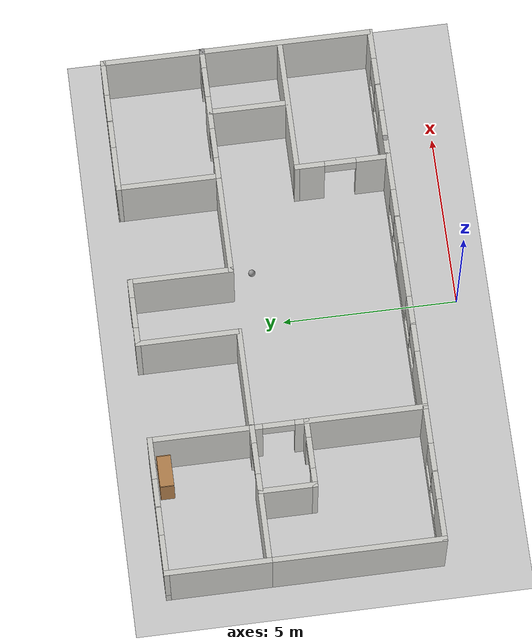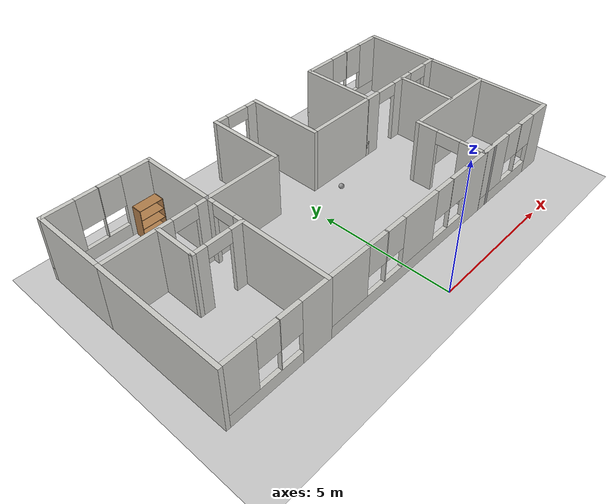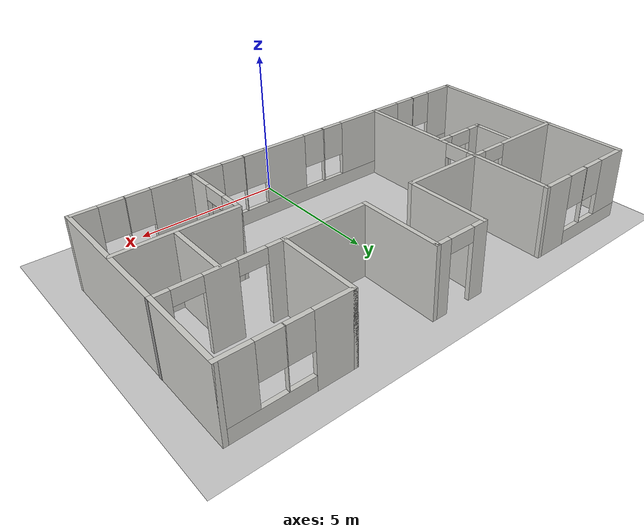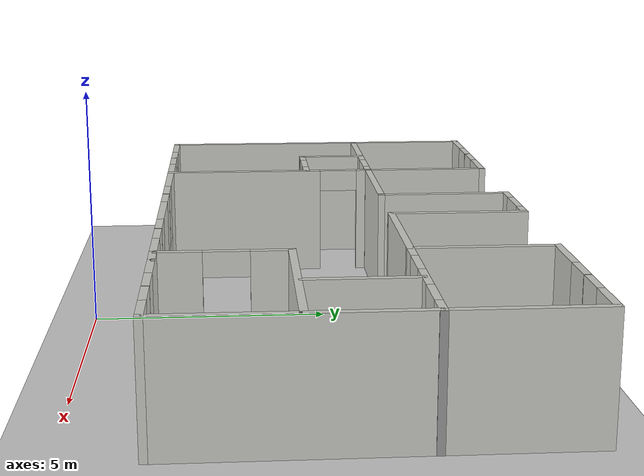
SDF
<sdf version="1.6">
 <world name="default">
  <model name="ground_plane">
   <static>1</static>
   <link name="link">
    <collision name="collision">
     <geometry><plane><normal>0 0 1</normal><size>100 100</size></plane></geometry>
     <surface>
      <contact><collide_bitmask>65535</collide_bitmask></contact>
      <friction><ode><mu>100</mu><mu2>50</mu2></ode></friction>
     </surface>
    </collision>
    <visual name="visual">
     <cast_shadows>0</cast_shadows>
     <geometry><plane><normal>0 0 1</normal><size>100 100</size></plane></geometry>
     <material>
      <script><uri>file://media/materials/scripts/gazebo.material</uri><name>Gazebo/Grey</name></script>
     </material>
    </visual>
   </link>
  </model>
  <model name="MyOffice">
   <pose>-0.034703 5.38022 0 0 -0 0</pose>
   <link name="Wall_0">
    <pose>-0.005 3.85 0 0 -0 3.14159</pose>
    <visual name="Wall_0_Visual_0">
     <pose>-0.723973 0 1.25 0 -0 0</pose>
     <geometry><box><size>0.552053 0.15 2.5</size></box></geometry>
     <material>
      <script><uri>file://media/materials/scripts/gazebo.material</uri><name>Gazebo/CeilingTiled</name></script>
      <ambient>1 1 1 1</ambient>
     </material>
     <meta><layer>0</layer></meta>
    </visual>
    <collision name="Wall_0_Collision_0">
     <geometry><box><size>0.552053 0.15 2.5</size></box></geometry>
     <pose>-0.723973 0 1.25 0 -0 0</pose>
    </collision>
    <visual name="Wall_0_Visual_1">
     <pose>0.726027 0 1.25 0 -0 0</pose>
     <geometry><box><size>0.547947 0.15 2.5</size></box></geometry>
     <material>
      <script><uri>file://media/materials/scripts/gazebo.material</uri><name>Gazebo/CeilingTiled</name></script>
      <ambient>1 1 1 1</ambient>
     </material>
     <meta><layer>0</layer></meta>
    </visual>
    <collision name="Wall_0_Collision_1">
     <geometry><box><size>0.547947 0.15 2.5</size></box></geometry>
     <pose>0.726027 0 1.25 0 -0 0</pose>
    </collision>
    <visual name="Wall_0_Visual_2">
     <pose>0.002053 0 2.25 0 -0 0</pose>
     <geometry><box><size>0.9 0.15 0.5</size></box></geometry>
     <material>
      <script><uri>file://media/materials/scripts/gazebo.material</uri><name>Gazebo/CeilingTiled</name></script>
      <ambient>1 1 1 1</ambient>
     </material>
     <meta><layer>0</layer></meta>
    </visual>
    <collision name="Wall_0_Collision_2">
     <geometry><box><size>0.9 0.15 0.5</size></box></geometry>
     <pose>0.002053 0 2.25 0 -0 0</pose>
    </collision>
   </link>
   <link name="Wall_1">
    <collision name="Wall_1_Collision">
     <geometry><box><size>3 0.15 2.5</size></box></geometry>
     <pose>0 0 1.25 0 -0 0</pose>
    </collision>
    <visual name="Wall_1_Visual">
     <pose>0 0 1.25 0 -0 0</pose>
     <geometry><box><size>3 0.15 2.5</size></box></geometry>
     <material>
      <script><uri>file://media/materials/scripts/gazebo.material</uri><name>Gazebo/CeilingTiled</name></script>
      <ambient>1 1 1 1</ambient>
     </material>
     <meta><layer>0</layer></meta>
    </visual>
    <pose>-0.93 2.425 0 0 0 -1.5708</pose>
   </link>
   <link name="Wall_10">
    <collision name="Wall_10_Collision">
     <geometry><box><size>0.16 0.15 2.5</size></box></geometry>
     <pose>0 0 1.25 0 -0 0</pose>
    </collision>
    <visual name="Wall_10_Visual">
     <pose>0 0 1.25 0 -0 0</pose>
     <geometry><box><size>0.16 0.15 2.5</size></box></geometry>
     <material>
      <script><uri>file://media/materials/scripts/gazebo.material</uri><name>Gazebo/Grey</name></script>
      <ambient>1 1 1 1</ambient>
     </material>
     <meta><layer>0</layer></meta>
    </visual>
    <pose>3.775 -3.85 0 0 -0 0</pose>
   </link>
   <link name="Wall_14">
    <collision name="Wall_14_Collision">
     <geometry><box><size>5 0.15 2.5</size></box></geometry>
     <pose>0 0 1.25 0 -0 0</pose>
    </collision>
    <visual name="Wall_14_Visual">
     <pose>0 0 1.25 0 -0 0</pose>
     <geometry><box><size>5 0.15 2.5</size></box></geometry>
     <material>
      <script><uri>file://media/materials/scripts/gazebo.material</uri><name>Gazebo/CeilingTiled</name></script>
      <ambient>1 1 1 1</ambient>
     </material>
     <meta><layer>0</layer></meta>
    </visual>
    <pose>7.62 -1.425 0 0 0 -1.5708</pose>
   </link>
   <link name="Wall_15">
    <pose>5.695 -3.85 0 0 -0 3.14159</pose>
    <visual name="Wall_15_Visual_0">
     <pose>-1.54591 0 1.25 0 -0 0</pose>
     <geometry><box><size>0.908188 0.15 2.5</size></box></geometry>
     <material>
      <script><uri>file://media/materials/scripts/gazebo.material</uri><name>Gazebo/CeilingTiled</name></script>
      <ambient>1 1 1 1</ambient>
     </material>
     <meta><layer>0</layer></meta>
    </visual>
    <collision name="Wall_15_Collision_0">
     <geometry><box><size>0.908188 0.15 2.5</size></box></geometry>
     <pose>-1.54591 0 1.25 0 -0 0</pose>
    </collision>
    <visual name="Wall_15_Visual_1">
     <pose>0.454094 0 0.25 0 -0 0</pose>
     <geometry><box><size>3.09181 0.15 0.5</size></box></geometry>
     <material>
      <script><uri>file://media/materials/scripts/gazebo.material</uri><name>Gazebo/CeilingTiled</name></script>
      <ambient>1 1 1 1</ambient>
     </material>
     <meta><layer>0</layer></meta>
    </visual>
    <collision name="Wall_15_Collision_1">
     <geometry><box><size>3.09181 0.15 0.5</size></box></geometry>
     <pose>0.454094 0 0.25 0 -0 0</pose>
    </collision>
    <visual name="Wall_15_Visual_2">
     <pose>-0.280795 0 1.5 0 -0 0</pose>
     <geometry><box><size>0.022033 0.15 2</size></box></geometry>
     <material>
      <script><uri>file://media/materials/scripts/gazebo.material</uri><name>Gazebo/CeilingTiled</name></script>
      <ambient>1 1 1 1</ambient>
     </material>
     <meta><layer>0</layer></meta>
    </visual>
    <collision name="Wall_15_Collision_2">
     <geometry><box><size>0.022033 0.15 2</size></box></geometry>
     <pose>-0.280795 0 1.5 0 -0 0</pose>
    </collision>
    <visual name="Wall_15_Visual_3">
     <pose>1.26511 0 1.5 0 -0 0</pose>
     <geometry><box><size>1.46978 0.15 2</size></box></geometry>
     <material>
      <script><uri>file://media/materials/scripts/gazebo.material</uri><name>Gazebo/CeilingTiled</name></script>
      <ambient>1 1 1 1</ambient>
     </material>
     <meta><layer>0</layer></meta>
    </visual>
    <collision name="Wall_15_Collision_3">
     <geometry><box><size>1.46978 0.15 2</size></box></geometry>
     <pose>1.26511 0 1.5 0 -0 0</pose>
    </collision>
    <visual name="Wall_15_Visual_4">
     <pose>-0.691812 0 1.9 0 -0 0</pose>
     <geometry><box><size>0.8 0.15 1.2</size></box></geometry>
     <material>
      <script><uri>file://media/materials/scripts/gazebo.material</uri><name>Gazebo/CeilingTiled</name></script>
      <ambient>1 1 1 1</ambient>
     </material>
     <meta><layer>0</layer></meta>
    </visual>
    <collision name="Wall_15_Collision_4">
     <geometry><box><size>0.8 0.15 1.2</size></box></geometry>
     <pose>-0.691812 0 1.9 0 -0 0</pose>
    </collision>
    <visual name="Wall_15_Visual_5">
     <pose>0.130221 0 1.9 0 -0 0</pose>
     <geometry><box><size>0.8 0.15 1.2</size></box></geometry>
     <material>
      <script><uri>file://media/materials/scripts/gazebo.material</uri><name>Gazebo/CeilingTiled</name></script>
      <ambient>1 1 1 1</ambient>
     </material>
     <meta><layer>0</layer></meta>
    </visual>
    <collision name="Wall_15_Collision_5">
     <geometry><box><size>0.8 0.15 1.2</size></box></geometry>
     <pose>0.130221 0 1.9 0 -0 0</pose>
    </collision>
   </link>
   <link name="Wall_17">
    <collision name="Wall_17_Collision">
     <geometry><box><size>3 0.15 2.5</size></box></geometry>
     <pose>0 0 1.25 0 -0 0</pose>
    </collision>
    <visual name="Wall_17_Visual">
     <pose>0 0 1.25 0 -0 0</pose>
     <geometry><box><size>3 0.15 2.5</size></box></geometry>
     <material>
      <script><uri>file://media/materials/scripts/gazebo.material</uri><name>Gazebo/CeilingTiled</name></script>
      <ambient>1 1 1 1</ambient>
     </material>
     <meta><layer>0</layer></meta>
    </visual>
    <pose>3.77 2.425 0 0 -0 1.5708</pose>
   </link>
   <link name="Wall_18">
    <pose>5.695 3.85 0 0 -0 0</pose>
    <visual name="Wall_18_Visual_0">
     <pose>-1.34382 0 1.25 0 -0 0</pose>
     <geometry><box><size>1.31237 0.15 2.5</size></box></geometry>
     <material>
      <script><uri>file://media/materials/scripts/gazebo.material</uri><name>Gazebo/CeilingTiled</name></script>
      <ambient>1 1 1 1</ambient>
     </material>
     <meta><layer>0</layer></meta>
    </visual>
    <collision name="Wall_18_Collision_0">
     <geometry><box><size>1.31237 0.15 2.5</size></box></geometry>
     <pose>-1.34382 0 1.25 0 -0 0</pose>
    </collision>
    <visual name="Wall_18_Visual_1">
     <pose>0.656184 0 0.25 0 -0 0</pose>
     <geometry><box><size>2.68763 0.15 0.5</size></box></geometry>
     <material>
      <script><uri>file://media/materials/scripts/gazebo.material</uri><name>Gazebo/CeilingTiled</name></script>
      <ambient>1 1 1 1</ambient>
     </material>
     <meta><layer>0</layer></meta>
    </visual>
    <collision name="Wall_18_Collision_1">
     <geometry><box><size>2.68763 0.15 0.5</size></box></geometry>
     <pose>0.656184 0 0.25 0 -0 0</pose>
    </collision>
    <visual name="Wall_18_Visual_2">
     <pose>0.123384 0 1.5 0 -0 0</pose>
     <geometry><box><size>0.022033 0.15 2</size></box></geometry>
     <material>
      <script><uri>file://media/materials/scripts/gazebo.material</uri><name>Gazebo/CeilingTiled</name></script>
      <ambient>1 1 1 1</ambient>
     </material>
     <meta><layer>0</layer></meta>
    </visual>
    <collision name="Wall_18_Collision_2">
     <geometry><box><size>0.022033 0.15 2</size></box></geometry>
     <pose>0.123384 0 1.5 0 -0 0</pose>
    </collision>
    <visual name="Wall_18_Visual_3">
     <pose>1.4672 0 1.5 0 -0 0</pose>
     <geometry><box><size>1.0656 0.15 2</size></box></geometry>
     <material>
      <script><uri>file://media/materials/scripts/gazebo.material</uri><name>Gazebo/CeilingTiled</name></script>
      <ambient>1 1 1 1</ambient>
     </material>
     <meta><layer>0</layer></meta>
    </visual>
    <collision name="Wall_18_Collision_3">
     <geometry><box><size>1.0656 0.15 2</size></box></geometry>
     <pose>1.4672 0 1.5 0 -0 0</pose>
    </collision>
    <visual name="Wall_18_Visual_4">
     <pose>-0.287632 0 1.9 0 -0 0</pose>
     <geometry><box><size>0.8 0.15 1.2</size></box></geometry>
     <material>
      <script><uri>file://media/materials/scripts/gazebo.material</uri><name>Gazebo/CeilingTiled</name></script>
      <ambient>1 1 1 1</ambient>
     </material>
     <meta><layer>0</layer></meta>
    </visual>
    <collision name="Wall_18_Collision_4">
     <geometry><box><size>0.8 0.15 1.2</size></box></geometry>
     <pose>-0.287632 0 1.9 0 -0 0</pose>
    </collision>
    <visual name="Wall_18_Visual_5">
     <pose>0.534401 0 1.9 0 -0 0</pose>
     <geometry><box><size>0.8 0.15 1.2</size></box></geometry>
     <material>
      <script><uri>file://media/materials/scripts/gazebo.material</uri><name>Gazebo/CeilingTiled</name></script>
      <ambient>1 1 1 1</ambient>
     </material>
     <meta><layer>0</layer></meta>
    </visual>
    <collision name="Wall_18_Collision_5">
     <geometry><box><size>0.8 0.15 1.2</size></box></geometry>
     <pose>0.534401 0 1.9 0 -0 0</pose>
    </collision>
   </link>
   <link name="Wall_19">
    <collision name="Wall_19_Collision">
     <geometry><box><size>3 0.15 2.5</size></box></geometry>
     <pose>0 0 1.25 0 -0 0</pose>
    </collision>
    <visual name="Wall_19_Visual">
     <pose>0 0 1.25 0 -0 0</pose>
     <geometry><box><size>3 0.15 2.5</size></box></geometry>
     <material>
      <script><uri>file://media/materials/scripts/gazebo.material</uri><name>Gazebo/CeilingTiled</name></script>
      <ambient>1 1 1 1</ambient>
     </material>
     <meta><layer>0</layer></meta>
    </visual>
    <pose>7.62 2.425 0 0 0 -1.5708</pose>
   </link>
   <link name="Wall_2">
    <collision name="Wall_2_Collision">
     <geometry><box><size>3 0.15 2.5</size></box></geometry>
     <pose>0 0 1.25 0 -0 0</pose>
    </collision>
    <visual name="Wall_2_Visual">
     <pose>0 0 1.25 0 -0 0</pose>
     <geometry><box><size>3 0.15 2.5</size></box></geometry>
     <material>
      <script><uri>file://media/materials/scripts/gazebo.material</uri><name>Gazebo/CeilingTiled</name></script>
      <ambient>1 1 1 1</ambient>
     </material>
     <meta><layer>0</layer></meta>
    </visual>
    <pose>-2.355 1 0 0 -0 3.14159</pose>
   </link>
   <link name="Wall_21">
    <collision name="Wall_21_Collision">
     <geometry><box><size>4 0.15 2.5</size></box></geometry>
     <pose>0 0 1.25 0 -0 0</pose>
    </collision>
    <visual name="Wall_21_Visual">
     <pose>0 0 1.25 0 -0 0</pose>
     <geometry><box><size>4 0.15 2.5</size></box></geometry>
     <material>
      <script><uri>file://media/materials/scripts/gazebo.material</uri><name>Gazebo/CeilingTiled</name></script>
      <ambient>1 1 1 1</ambient>
     </material>
     <meta><layer>0</layer></meta>
    </visual>
    <pose>5.67839 -1.23961 0 0 -0 0</pose>
   </link>
   <link name="Wall_23">
    <pose>-0.005 -3.85 0 0 -0 3.14159</pose>
    <visual name="Wall_23_Visual_0">
     <pose>-3.29206 0 1.25 0 -0 0</pose>
     <geometry><box><size>1.11588 0.15 2.5</size></box></geometry>
     <material>
      <script><uri>file://media/materials/scripts/gazebo.material</uri><name>Gazebo/CeilingTiled</name></script>
      <ambient>1 1 1 1</ambient>
     </material>
     <meta><layer>0</layer></meta>
    </visual>
    <collision name="Wall_23_Collision_0">
     <geometry><box><size>1.11588 0.15 2.5</size></box></geometry>
     <pose>-3.29206 0 1.25 0 -0 0</pose>
    </collision>
    <visual name="Wall_23_Visual_1">
     <pose>0.557941 0 0.25 0 -0 0</pose>
     <geometry><box><size>6.58412 0.15 0.5</size></box></geometry>
     <material>
      <script><uri>file://media/materials/scripts/gazebo.material</uri><name>Gazebo/CeilingTiled</name></script>
      <ambient>1 1 1 1</ambient>
     </material>
     <meta><layer>0</layer></meta>
    </visual>
    <collision name="Wall_23_Collision_1">
     <geometry><box><size>6.58412 0.15 0.5</size></box></geometry>
     <pose>0.557941 0 0.25 0 -0 0</pose>
    </collision>
    <visual name="Wall_23_Visual_2">
     <pose>-1.9231 0 1.5 0 -0 0</pose>
     <geometry><box><size>0.022033 0.15 2</size></box></geometry>
     <material>
      <script><uri>file://media/materials/scripts/gazebo.material</uri><name>Gazebo/CeilingTiled</name></script>
      <ambient>1 1 1 1</ambient>
     </material>
     <meta><layer>0</layer></meta>
    </visual>
    <collision name="Wall_23_Collision_2">
     <geometry><box><size>0.022033 0.15 2</size></box></geometry>
     <pose>-1.9231 0 1.5 0 -0 0</pose>
    </collision>
    <visual name="Wall_23_Visual_3">
     <pose>-0.30527 0 1.5 0 -0 0</pose>
     <geometry><box><size>1.61363 0.15 2</size></box></geometry>
     <material>
      <script><uri>file://media/materials/scripts/gazebo.material</uri><name>Gazebo/CeilingTiled</name></script>
      <ambient>1 1 1 1</ambient>
     </material>
     <meta><layer>0</layer></meta>
    </visual>
    <collision name="Wall_23_Collision_3">
     <geometry><box><size>1.61363 0.15 2</size></box></geometry>
     <pose>-0.30527 0 1.5 0 -0 0</pose>
    </collision>
    <visual name="Wall_23_Visual_4">
     <pose>1.32131 0 1.5 0 -0 0</pose>
     <geometry><box><size>0.039523 0.15 2</size></box></geometry>
     <material>
      <script><uri>file://media/materials/scripts/gazebo.material</uri><name>Gazebo/CeilingTiled</name></script>
      <ambient>1 1 1 1</ambient>
     </material>
     <meta><layer>0</layer></meta>
    </visual>
    <collision name="Wall_23_Collision_4">
     <geometry><box><size>0.039523 0.15 2</size></box></geometry>
     <pose>1.32131 0 1.5 0 -0 0</pose>
    </collision>
    <visual name="Wall_23_Visual_5">
     <pose>2.99553 0 1.5 0 -0 0</pose>
     <geometry><box><size>1.70893 0.15 2</size></box></geometry>
     <material>
      <script><uri>file://media/materials/scripts/gazebo.material</uri><name>Gazebo/CeilingTiled</name></script>
      <ambient>1 1 1 1</ambient>
     </material>
     <meta><layer>0</layer></meta>
    </visual>
    <collision name="Wall_23_Collision_5">
     <geometry><box><size>1.70893 0.15 2</size></box></geometry>
     <pose>2.99553 0 1.5 0 -0 0</pose>
    </collision>
    <visual name="Wall_23_Visual_6">
     <pose>-2.33412 0 1.9 0 -0 0</pose>
     <geometry><box><size>0.8 0.15 1.2</size></box></geometry>
     <material>
      <script><uri>file://media/materials/scripts/gazebo.material</uri><name>Gazebo/CeilingTiled</name></script>
      <ambient>1 1 1 1</ambient>
     </material>
     <meta><layer>0</layer></meta>
    </visual>
    <collision name="Wall_23_Collision_6">
     <geometry><box><size>0.8 0.15 1.2</size></box></geometry>
     <pose>-2.33412 0 1.9 0 -0 0</pose>
    </collision>
    <visual name="Wall_23_Visual_7">
     <pose>-1.51208 0 1.9 0 -0 0</pose>
     <geometry><box><size>0.8 0.15 1.2</size></box></geometry>
     <material>
      <script><uri>file://media/materials/scripts/gazebo.material</uri><name>Gazebo/CeilingTiled</name></script>
      <ambient>1 1 1 1</ambient>
     </material>
     <meta><layer>0</layer></meta>
    </visual>
    <collision name="Wall_23_Collision_7">
     <geometry><box><size>0.8 0.15 1.2</size></box></geometry>
     <pose>-1.51208 0 1.9 0 -0 0</pose>
    </collision>
    <visual name="Wall_23_Visual_8">
     <pose>0.901544 0 1.9 0 -0 0</pose>
     <geometry><box><size>0.8 0.15 1.2</size></box></geometry>
     <material>
      <script><uri>file://media/materials/scripts/gazebo.material</uri><name>Gazebo/CeilingTiled</name></script>
      <ambient>1 1 1 1</ambient>
     </material>
     <meta><layer>0</layer></meta>
    </visual>
    <collision name="Wall_23_Collision_8">
     <geometry><box><size>0.8 0.15 1.2</size></box></geometry>
     <pose>0.901544 0 1.9 0 -0 0</pose>
    </collision>
    <visual name="Wall_23_Visual_9">
     <pose>1.74107 0 1.9 0 -0 0</pose>
     <geometry><box><size>0.8 0.15 1.2</size></box></geometry>
     <material>
      <script><uri>file://media/materials/scripts/gazebo.material</uri><name>Gazebo/CeilingTiled</name></script>
      <ambient>1 1 1 1</ambient>
     </material>
     <meta><layer>0</layer></meta>
    </visual>
    <collision name="Wall_23_Collision_9">
     <geometry><box><size>0.8 0.15 1.2</size></box></geometry>
     <pose>1.74107 0 1.9 0 -0 0</pose>
    </collision>
   </link>
   <link name="Wall_24">
    <pose>-5.705 -3.85 0 0 -0 3.14159</pose>
    <visual name="Wall_24_Visual_0">
     <pose>-1.42172 0 1.25 0 -0 0</pose>
     <geometry><box><size>1.15657 0.15 2.5</size></box></geometry>
     <material>
      <script><uri>file://media/materials/scripts/gazebo.material</uri><name>Gazebo/CeilingTiled</name></script>
      <ambient>0.760784 0.662745 0.627451 1</ambient>
     </material>
     <meta><layer>0</layer></meta>
    </visual>
    <collision name="Wall_24_Collision_0">
     <geometry><box><size>1.15657 0.15 2.5</size></box></geometry>
     <pose>-1.42172 0 1.25 0 -0 0</pose>
    </collision>
    <visual name="Wall_24_Visual_1">
     <pose>0.578285 0 0.25 0 -0 0</pose>
     <geometry><box><size>2.84343 0.15 0.5</size></box></geometry>
     <material>
      <script><uri>file://media/materials/scripts/gazebo.material</uri><name>Gazebo/CeilingTiled</name></script>
      <ambient>0.760784 0.662745 0.627451 1</ambient>
     </material>
     <meta><layer>0</layer></meta>
    </visual>
    <collision name="Wall_24_Collision_1">
     <geometry><box><size>2.84343 0.15 0.5</size></box></geometry>
     <pose>0.578285 0 0.25 0 -0 0</pose>
    </collision>
    <visual name="Wall_24_Visual_2">
     <pose>-0.032413 0 1.5 0 -0 0</pose>
     <geometry><box><size>0.022033 0.15 2</size></box></geometry>
     <material>
      <script><uri>file://media/materials/scripts/gazebo.material</uri><name>Gazebo/CeilingTiled</name></script>
      <ambient>0.760784 0.662745 0.627451 1</ambient>
     </material>
     <meta><layer>0</layer></meta>
    </visual>
    <collision name="Wall_24_Collision_2">
     <geometry><box><size>0.022033 0.15 2</size></box></geometry>
     <pose>-0.032413 0 1.5 0 -0 0</pose>
    </collision>
    <visual name="Wall_24_Visual_3">
     <pose>1.3893 0 1.5 0 -0 0</pose>
     <geometry><box><size>1.2214 0.15 2</size></box></geometry>
     <material>
      <script><uri>file://media/materials/scripts/gazebo.material</uri><name>Gazebo/CeilingTiled</name></script>
      <ambient>0.760784 0.662745 0.627451 1</ambient>
     </material>
     <meta><layer>0</layer></meta>
    </visual>
    <collision name="Wall_24_Collision_3">
     <geometry><box><size>1.2214 0.15 2</size></box></geometry>
     <pose>1.3893 0 1.5 0 -0 0</pose>
    </collision>
    <visual name="Wall_24_Visual_4">
     <pose>-0.44343 0 1.9 0 -0 0</pose>
     <geometry><box><size>0.8 0.15 1.2</size></box></geometry>
     <material>
      <script><uri>file://media/materials/scripts/gazebo.material</uri><name>Gazebo/CeilingTiled</name></script>
      <ambient>0.760784 0.662745 0.627451 1</ambient>
     </material>
     <meta><layer>0</layer></meta>
    </visual>
    <collision name="Wall_24_Collision_4">
     <geometry><box><size>0.8 0.15 1.2</size></box></geometry>
     <pose>-0.44343 0 1.9 0 -0 0</pose>
    </collision>
    <visual name="Wall_24_Visual_5">
     <pose>0.378603 0 1.9 0 -0 0</pose>
     <geometry><box><size>0.8 0.15 1.2</size></box></geometry>
     <material>
      <script><uri>file://media/materials/scripts/gazebo.material</uri><name>Gazebo/CeilingTiled</name></script>
      <ambient>0.760784 0.662745 0.627451 1</ambient>
     </material>
     <meta><layer>0</layer></meta>
    </visual>
    <collision name="Wall_24_Collision_5">
     <geometry><box><size>0.8 0.15 1.2</size></box></geometry>
     <pose>0.378603 0 1.9 0 -0 0</pose>
    </collision>
   </link>
   <link name="Wall_3">
    <pose>-3.78 -1.425 0 0 0 -1.5708</pose>
    <visual name="Wall_3_Visual_0">
     <pose>-2.31536 0 1.25 0 -0 0</pose>
     <geometry><box><size>0.36928 0.15 2.5</size></box></geometry>
     <material>
      <script><uri>file://media/materials/scripts/gazebo.material</uri><name>Gazebo/CeilingTiled</name></script>
      <ambient>0.760784 0.662745 0.627451 1</ambient>
     </material>
     <meta><layer>0</layer></meta>
    </visual>
    <collision name="Wall_3_Collision_0">
     <geometry><box><size>0.36928 0.15 2.5</size></box></geometry>
     <pose>-2.31536 0 1.25 0 -0 0</pose>
    </collision>
    <visual name="Wall_3_Visual_1">
     <pose>0.63464 0 1.25 0 -0 0</pose>
     <geometry><box><size>3.73072 0.15 2.5</size></box></geometry>
     <material>
      <script><uri>file://media/materials/scripts/gazebo.material</uri><name>Gazebo/CeilingTiled</name></script>
      <ambient>0.760784 0.662745 0.627451 1</ambient>
     </material>
     <meta><layer>0</layer></meta>
    </visual>
    <collision name="Wall_3_Collision_1">
     <geometry><box><size>3.73072 0.15 2.5</size></box></geometry>
     <pose>0.63464 0 1.25 0 -0 0</pose>
    </collision>
    <visual name="Wall_3_Visual_2">
     <pose>-1.68072 0 2.25 0 -0 0</pose>
     <geometry><box><size>0.9 0.15 0.5</size></box></geometry>
     <material>
      <script><uri>file://media/materials/scripts/gazebo.material</uri><name>Gazebo/CeilingTiled</name></script>
      <ambient>0.760784 0.662745 0.627451 1</ambient>
     </material>
     <meta><layer>0</layer></meta>
    </visual>
    <collision name="Wall_3_Collision_2">
     <geometry><box><size>0.9 0.15 0.5</size></box></geometry>
     <pose>-1.68072 0 2.25 0 -0 0</pose>
    </collision>
   </link>
   <link name="Wall_32">
    <collision name="Wall_32_Collision">
     <geometry><box><size>3 0.15 2.5</size></box></geometry>
     <pose>0 0 1.25 0 -0 0</pose>
    </collision>
    <visual name="Wall_32_Visual">
     <pose>0 0 1.25 0 -0 0</pose>
     <geometry><box><size>3 0.15 2.5</size></box></geometry>
     <material>
      <script><uri>file://media/materials/scripts/gazebo.material</uri><name>Gazebo/CeilingTiled</name></script>
      <ambient>1 1 1 1</ambient>
     </material>
     <meta><layer>0</layer></meta>
    </visual>
    <pose>-3.78 2.425 0 0 -0 1.5708</pose>
   </link>
   <link name="Wall_33">
    <pose>-5.705 3.85 0 0 -0 3.14159</pose>
    <visual name="Wall_33_Visual_0">
     <pose>-1.39548 0 1.25 0 -0 0</pose>
     <geometry><box><size>1.20904 0.15 2.5</size></box></geometry>
     <material>
      <script><uri>file://media/materials/scripts/gazebo.material</uri><name>Gazebo/CeilingTiled</name></script>
      <ambient>1 1 1 1</ambient>
     </material>
     <meta><layer>0</layer></meta>
    </visual>
    <collision name="Wall_33_Collision_0">
     <geometry><box><size>1.20904 0.15 2.5</size></box></geometry>
     <pose>-1.39548 0 1.25 0 -0 0</pose>
    </collision>
    <visual name="Wall_33_Visual_1">
     <pose>0.60452 0 0.25 0 -0 0</pose>
     <geometry><box><size>2.79096 0.15 0.5</size></box></geometry>
     <material>
      <script><uri>file://media/materials/scripts/gazebo.material</uri><name>Gazebo/CeilingTiled</name></script>
      <ambient>1 1 1 1</ambient>
     </material>
     <meta><layer>0</layer></meta>
    </visual>
    <collision name="Wall_33_Collision_1">
     <geometry><box><size>2.79096 0.15 0.5</size></box></geometry>
     <pose>0.60452 0 0.25 0 -0 0</pose>
    </collision>
    <visual name="Wall_33_Visual_2">
     <pose>0.020057 0 1.5 0 -0 0</pose>
     <geometry><box><size>0.022033 0.15 2</size></box></geometry>
     <material>
      <script><uri>file://media/materials/scripts/gazebo.material</uri><name>Gazebo/CeilingTiled</name></script>
      <ambient>1 1 1 1</ambient>
     </material>
     <meta><layer>0</layer></meta>
    </visual>
    <collision name="Wall_33_Collision_2">
     <geometry><box><size>0.022033 0.15 2</size></box></geometry>
     <pose>0.020057 0 1.5 0 -0 0</pose>
    </collision>
    <visual name="Wall_33_Visual_3">
     <pose>1.41554 0 1.5 0 -0 0</pose>
     <geometry><box><size>1.16893 0.15 2</size></box></geometry>
     <material>
      <script><uri>file://media/materials/scripts/gazebo.material</uri><name>Gazebo/CeilingTiled</name></script>
      <ambient>1 1 1 1</ambient>
     </material>
     <meta><layer>0</layer></meta>
    </visual>
    <collision name="Wall_33_Collision_3">
     <geometry><box><size>1.16893 0.15 2</size></box></geometry>
     <pose>1.41554 0 1.5 0 -0 0</pose>
    </collision>
    <visual name="Wall_33_Visual_4">
     <pose>-0.39096 0 1.9 0 -0 0</pose>
     <geometry><box><size>0.8 0.15 1.2</size></box></geometry>
     <material>
      <script><uri>file://media/materials/scripts/gazebo.material</uri><name>Gazebo/CeilingTiled</name></script>
      <ambient>1 1 1 1</ambient>
     </material>
     <meta><layer>0</layer></meta>
    </visual>
    <collision name="Wall_33_Collision_4">
     <geometry><box><size>0.8 0.15 1.2</size></box></geometry>
     <pose>-0.39096 0 1.9 0 -0 0</pose>
    </collision>
    <visual name="Wall_33_Visual_5">
     <pose>0.431073 0 1.9 0 -0 0</pose>
     <geometry><box><size>0.8 0.15 1.2</size></box></geometry>
     <material>
      <script><uri>file://media/materials/scripts/gazebo.material</uri><name>Gazebo/CeilingTiled</name></script>
      <ambient>1 1 1 1</ambient>
     </material>
     <meta><layer>0</layer></meta>
    </visual>
    <collision name="Wall_33_Collision_5">
     <geometry><box><size>0.8 0.15 1.2</size></box></geometry>
     <pose>0.431073 0 1.9 0 -0 0</pose>
    </collision>
   </link>
   <link name="Wall_34">
    <collision name="Wall_34_Collision">
     <geometry><box><size>3 0.15 2.5</size></box></geometry>
     <pose>0 0 1.25 0 -0 0</pose>
    </collision>
    <visual name="Wall_34_Visual">
     <pose>0 0 1.25 0 -0 0</pose>
     <geometry><box><size>3 0.15 2.5</size></box></geometry>
     <material>
      <script><uri>file://media/materials/scripts/gazebo.material</uri><name>Gazebo/CeilingTiled</name></script>
      <ambient>1 1 1 1</ambient>
     </material>
     <meta><layer>0</layer></meta>
    </visual>
    <pose>-7.63 2.425 0 0 0 -1.5708</pose>
   </link>
   <link name="Wall_35">
    <pose>-5.705 1 0 0 -0 0</pose>
    <visual name="Wall_35_Visual_0">
     <pose>-0.711654 0 1.25 0 -0 0</pose>
     <geometry><box><size>2.57669 0.15 2.5</size></box></geometry>
     <material>
      <script><uri>file://media/materials/scripts/gazebo.material</uri><name>Gazebo/CeilingTiled</name></script>
      <ambient>0.760784 0.662745 0.627451 1</ambient>
     </material>
     <meta><layer>0</layer></meta>
    </visual>
    <collision name="Wall_35_Collision_0">
     <geometry><box><size>2.57669 0.15 2.5</size></box></geometry>
     <pose>-0.711654 0 1.25 0 -0 0</pose>
    </collision>
    <visual name="Wall_35_Visual_1">
     <pose>1.73835 0 1.25 0 -0 0</pose>
     <geometry><box><size>0.523307 0.15 2.5</size></box></geometry>
     <material>
      <script><uri>file://media/materials/scripts/gazebo.material</uri><name>Gazebo/CeilingTiled</name></script>
      <ambient>0.760784 0.662745 0.627451 1</ambient>
     </material>
     <meta><layer>0</layer></meta>
    </visual>
    <collision name="Wall_35_Collision_1">
     <geometry><box><size>0.523307 0.15 2.5</size></box></geometry>
     <pose>1.73835 0 1.25 0 -0 0</pose>
    </collision>
    <visual name="Wall_35_Visual_2">
     <pose>1.02669 0 2.25 0 -0 0</pose>
     <geometry><box><size>0.9 0.15 0.5</size></box></geometry>
     <material>
      <script><uri>file://media/materials/scripts/gazebo.material</uri><name>Gazebo/CeilingTiled</name></script>
      <ambient>0.760784 0.662745 0.627451 1</ambient>
     </material>
     <meta><layer>0</layer></meta>
    </visual>
    <collision name="Wall_35_Collision_2">
     <geometry><box><size>0.9 0.15 0.5</size></box></geometry>
     <pose>1.02669 0 2.25 0 -0 0</pose>
    </collision>
   </link>
   <link name="Wall_36">
    <collision name="Wall_36_Collision">
     <geometry><box><size>0.16 0.15 2.5</size></box></geometry>
     <pose>0 0 1.25 0 -0 0</pose>
    </collision>
    <visual name="Wall_36_Visual">
     <pose>0 0 1.25 0 -0 0</pose>
     <geometry><box><size>0.16 0.15 2.5</size></box></geometry>
     <material>
      <script><uri>file://media/materials/scripts/gazebo.material</uri><name>Gazebo/Grey</name></script>
      <ambient>1 1 1 1</ambient>
     </material>
     <meta><layer>0</layer></meta>
    </visual>
    <pose>-3.775 1 0 0 -0 0</pose>
   </link>
   <link name="Wall_38">
    <pose>-4.70983 -0.522516 0 0 -0 3.14159</pose>
    <visual name="Wall_38_Visual_0">
     <pose>-0.725551 0 1.25 0 -0 0</pose>
     <geometry><box><size>0.548898 0.15 2.5</size></box></geometry>
     <material>
      <script><uri>file://media/materials/scripts/gazebo.material</uri><name>Gazebo/CeilingTiled</name></script>
      <ambient>1 1 1 1</ambient>
     </material>
     <meta><layer>0</layer></meta>
    </visual>
    <collision name="Wall_38_Collision_0">
     <geometry><box><size>0.548898 0.15 2.5</size></box></geometry>
     <pose>-0.725551 0 1.25 0 -0 0</pose>
    </collision>
    <visual name="Wall_38_Visual_1">
     <pose>0.724449 0 1.25 0 -0 0</pose>
     <geometry><box><size>0.551102 0.15 2.5</size></box></geometry>
     <material>
      <script><uri>file://media/materials/scripts/gazebo.material</uri><name>Gazebo/CeilingTiled</name></script>
      <ambient>1 1 1 1</ambient>
     </material>
     <meta><layer>0</layer></meta>
    </visual>
    <collision name="Wall_38_Collision_1">
     <geometry><box><size>0.551102 0.15 2.5</size></box></geometry>
     <pose>0.724449 0 1.25 0 -0 0</pose>
    </collision>
    <visual name="Wall_38_Visual_2">
     <pose>-0.001102 0 2.25 0 -0 0</pose>
     <geometry><box><size>0.9 0.15 0.5</size></box></geometry>
     <material>
      <script><uri>file://media/materials/scripts/gazebo.material</uri><name>Gazebo/CeilingTiled</name></script>
      <ambient>1 1 1 1</ambient>
     </material>
     <meta><layer>0</layer></meta>
    </visual>
    <collision name="Wall_38_Collision_2">
     <geometry><box><size>0.9 0.15 0.5</size></box></geometry>
     <pose>-0.001102 0 2.25 0 -0 0</pose>
    </collision>
   </link>
   <link name="Wall_39">
    <collision name="Wall_39_Collision">
     <geometry><box><size>1.65 0.15 2.5</size></box></geometry>
     <pose>0 0 1.25 0 -0 0</pose>
    </collision>
    <visual name="Wall_39_Visual">
     <pose>0 0 1.25 0 -0 0</pose>
     <geometry><box><size>1.65 0.15 2.5</size></box></geometry>
     <material>
      <script><uri>file://media/materials/scripts/gazebo.material</uri><name>Gazebo/CeilingTiled</name></script>
      <ambient>1 1 1 1</ambient>
     </material>
     <meta><layer>0</layer></meta>
    </visual>
    <pose>-5.63483 0.227484 0 0 -0 1.5708</pose>
   </link>
   <link name="Wall_41">
    <collision name="Wall_41_Collision">
     <geometry><box><size>5 0.15 2.5</size></box></geometry>
     <pose>0 0 1.25 0 -0 0</pose>
    </collision>
    <visual name="Wall_41_Visual">
     <pose>0 0 1.25 0 -0 0</pose>
     <geometry><box><size>5 0.15 2.5</size></box></geometry>
     <material>
      <script><uri>file://media/materials/scripts/gazebo.material</uri><name>Gazebo/CeilingTiled</name></script>
      <ambient>0.760784 0.662745 0.627451 1</ambient>
     </material>
     <meta><layer>0</layer></meta>
    </visual>
    <pose>-7.63 -1.425 0 0 0 -1.5708</pose>
   </link>
   <link name="Wall_43">
    <pose>5.695 1 0 0 -0 0</pose>
    <visual name="Wall_43_Visual_0">
     <pose>-1.68173 0 1.25 0 -0 0</pose>
     <geometry><box><size>0.636535 0.15 2.5</size></box></geometry>
     <material>
      <script><uri>file://media/materials/scripts/gazebo.material</uri><name>Gazebo/CeilingTiled</name></script>
      <ambient>1 1 1 1</ambient>
     </material>
     <meta><layer>0</layer></meta>
    </visual>
    <collision name="Wall_43_Collision_0">
     <geometry><box><size>0.636535 0.15 2.5</size></box></geometry>
     <pose>-1.68173 0 1.25 0 -0 0</pose>
    </collision>
    <visual name="Wall_43_Visual_1">
     <pose>0.029478 0 1.25 0 -0 0</pose>
     <geometry><box><size>0.985885 0.15 2.5</size></box></geometry>
     <material>
      <script><uri>file://media/materials/scripts/gazebo.material</uri><name>Gazebo/CeilingTiled</name></script>
      <ambient>1 1 1 1</ambient>
     </material>
     <meta><layer>0</layer></meta>
    </visual>
    <collision name="Wall_43_Collision_1">
     <geometry><box><size>0.985885 0.15 2.5</size></box></geometry>
     <pose>0.029478 0 1.25 0 -0 0</pose>
    </collision>
    <visual name="Wall_43_Visual_2">
     <pose>1.71121 0 1.25 0 -0 0</pose>
     <geometry><box><size>0.57758 0.15 2.5</size></box></geometry>
     <material>
      <script><uri>file://media/materials/scripts/gazebo.material</uri><name>Gazebo/CeilingTiled</name></script>
      <ambient>1 1 1 1</ambient>
     </material>
     <meta><layer>0</layer></meta>
    </visual>
    <collision name="Wall_43_Collision_2">
     <geometry><box><size>0.57758 0.15 2.5</size></box></geometry>
     <pose>1.71121 0 1.25 0 -0 0</pose>
    </collision>
    <visual name="Wall_43_Visual_3">
     <pose>-0.913465 0 2.25 0 -0 0</pose>
     <geometry><box><size>0.9 0.15 0.5</size></box></geometry>
     <material>
      <script><uri>file://media/materials/scripts/gazebo.material</uri><name>Gazebo/CeilingTiled</name></script>
      <ambient>1 1 1 1</ambient>
     </material>
     <meta><layer>0</layer></meta>
    </visual>
    <collision name="Wall_43_Collision_3">
     <geometry><box><size>0.9 0.15 0.5</size></box></geometry>
     <pose>-0.913465 0 2.25 0 -0 0</pose>
    </collision>
    <visual name="Wall_43_Visual_4">
     <pose>0.97242 0 2.25 0 -0 0</pose>
     <geometry><box><size>0.9 0.15 0.5</size></box></geometry>
     <material>
      <script><uri>file://media/materials/scripts/gazebo.material</uri><name>Gazebo/CeilingTiled</name></script>
      <ambient>1 1 1 1</ambient>
     </material>
     <meta><layer>0</layer></meta>
    </visual>
    <collision name="Wall_43_Collision_4">
     <geometry><box><size>0.9 0.15 0.5</size></box></geometry>
     <pose>0.97242 0 2.25 0 -0 0</pose>
    </collision>
   </link>
   <link name="Wall_44">
    <collision name="Wall_44_Collision">
     <geometry><box><size>0.16 0.15 2.5</size></box></geometry>
     <pose>0 0 1.25 0 -0 0</pose>
    </collision>
    <visual name="Wall_44_Visual">
     <pose>0 0 1.25 0 -0 0</pose>
     <geometry><box><size>0.16 0.15 2.5</size></box></geometry>
     <material>
      <script><uri>file://media/materials/scripts/gazebo.material</uri><name>Gazebo/Grey</name></script>
      <ambient>1 1 1 1</ambient>
     </material>
     <meta><layer>0</layer></meta>
    </visual>
    <pose>7.625 1 0 0 -0 0</pose>
   </link>
   <link name="Wall_46">
    <collision name="Wall_46_Collision">
     <geometry><box><size>2.25 0.15 2.5</size></box></geometry>
     <pose>0 0 1.25 0 -0 0</pose>
    </collision>
    <visual name="Wall_46_Visual">
     <pose>0 0 1.25 0 -0 0</pose>
     <geometry><box><size>2.25 0.15 2.5</size></box></geometry>
     <material>
      <script><uri>file://media/materials/scripts/gazebo.material</uri><name>Gazebo/CeilingTiled</name></script>
      <ambient>1 1 1 1</ambient>
     </material>
     <meta><layer>0</layer></meta>
    </visual>
    <pose>5.74726 -0.103351 0 0 0 -1.5708</pose>
   </link>
   <link name="Wall_48">
    <pose>3.75339 -2.53961 0 0 0 -1.5708</pose>
    <visual name="Wall_48_Visual_0">
     <pose>-0.943114 0 1.25 0 -0 0</pose>
     <geometry><box><size>0.863773 0.15 2.5</size></box></geometry>
     <material>
      <script><uri>file://media/materials/scripts/gazebo.material</uri><name>Gazebo/CeilingTiled</name></script>
      <ambient>1 1 1 1</ambient>
     </material>
     <meta><layer>0</layer></meta>
    </visual>
    <collision name="Wall_48_Collision_0">
     <geometry><box><size>0.863773 0.15 2.5</size></box></geometry>
     <pose>-0.943114 0 1.25 0 -0 0</pose>
    </collision>
    <visual name="Wall_48_Visual_1">
     <pose>0.881886 0 1.25 0 -0 0</pose>
     <geometry><box><size>0.986227 0.15 2.5</size></box></geometry>
     <material>
      <script><uri>file://media/materials/scripts/gazebo.material</uri><name>Gazebo/CeilingTiled</name></script>
      <ambient>1 1 1 1</ambient>
     </material>
     <meta><layer>0</layer></meta>
    </visual>
    <collision name="Wall_48_Collision_1">
     <geometry><box><size>0.986227 0.15 2.5</size></box></geometry>
     <pose>0.881886 0 1.25 0 -0 0</pose>
    </collision>
    <visual name="Wall_48_Visual_2">
     <pose>-0.061227 0 2.25 0 -0 0</pose>
     <geometry><box><size>0.9 0.15 0.5</size></box></geometry>
     <material>
      <script><uri>file://media/materials/scripts/gazebo.material</uri><name>Gazebo/CeilingTiled</name></script>
      <ambient>1 1 1 1</ambient>
     </material>
     <meta><layer>0</layer></meta>
    </visual>
    <collision name="Wall_48_Collision_2">
     <geometry><box><size>0.9 0.15 0.5</size></box></geometry>
     <pose>-0.061227 0 2.25 0 -0 0</pose>
    </collision>
   </link>
   <link name="Wall_5">
    <collision name="Wall_5_Collision">
     <geometry><box><size>0.15 0.15 2.5</size></box></geometry>
     <pose>0 0 1.25 0 -0 0</pose>
    </collision>
    <visual name="Wall_5_Visual">
     <pose>0 0 1.25 0 -0 0</pose>
     <geometry><box><size>0.15 0.15 2.5</size></box></geometry>
     <material>
      <script><uri>file://media/materials/scripts/gazebo.material</uri><name>Gazebo/Grey</name></script>
      <ambient>1 1 1 1</ambient>
     </material>
     <meta><layer>0</layer></meta>
    </visual>
    <pose>4.32 -3.85 0 0 -0 0</pose>
   </link>
   <link name="Wall_7">
    <collision name="Wall_7_Collision">
     <geometry><box><size>3 0.15 2.5</size></box></geometry>
     <pose>0 0 1.25 0 -0 0</pose>
    </collision>
    <visual name="Wall_7_Visual">
     <pose>0 0 1.25 0 -0 0</pose>
     <geometry><box><size>3 0.15 2.5</size></box></geometry>
     <material>
      <script><uri>file://media/materials/scripts/gazebo.material</uri><name>Gazebo/CeilingTiled</name></script>
      <ambient>1 1 1 1</ambient>
     </material>
     <meta><layer>0</layer></meta>
    </visual>
    <pose>0.92 2.425 0 0 0 -1.5708</pose>
   </link>
   <link name="Wall_8">
    <collision name="Wall_8_Collision">
     <geometry><box><size>3 0.15 2.5</size></box></geometry>
     <pose>0 0 1.25 0 -0 0</pose>
    </collision>
    <visual name="Wall_8_Visual">
     <pose>0 0 1.25 0 -0 0</pose>
     <geometry><box><size>3 0.15 2.5</size></box></geometry>
     <material>
      <script><uri>file://media/materials/scripts/gazebo.material</uri><name>Gazebo/CeilingTiled</name></script>
      <ambient>1 1 1 1</ambient>
     </material>
     <meta><layer>0</layer></meta>
    </visual>
    <pose>2.345 1 0 0 -0 0</pose>
   </link>
   <static>1</static>
  </model>
  <model name="bookshelf">
   <static>1</static>
   <link name="link">
    <inertial><mass>1</mass></inertial>
    <collision name="back">
     <pose>0 0.005 0.6 0 -0 0</pose>
     <geometry><box><size>0.9 0.01 1.2</size></box></geometry>
    </collision>
    <visual name="visual1">
     <pose>0 0.005 0.6 0 -0 0</pose>
     <geometry><box><size>0.9 0.01 1.2</size></box></geometry>
     <material>
      <script><uri>file://media/materials/scripts/gazebo.material</uri><name>Gazebo/Wood</name></script>
     </material>
    </visual>
    <collision name="left_side">
     <pose>0.45 -0.195 0.6 0 -0 0</pose>
     <geometry><box><size>0.02 0.4 1.2</size></box></geometry>
    </collision>
    <visual name="visual2">
     <pose>0.45 -0.195 0.6 0 -0 0</pose>
     <geometry><box><size>0.02 0.4 1.2</size></box></geometry>
     <material>
      <script><uri>file://media/materials/scripts/gazebo.material</uri><name>Gazebo/Wood</name></script>
     </material>
    </visual>
    <collision name="right_side">
     <pose>-0.45 -0.195 0.6 0 -0 0</pose>
     <geometry><box><size>0.02 0.4 1.2</size></box></geometry>
    </collision>
    <visual name="visual3">
     <pose>-0.45 -0.195 0.6 0 -0 0</pose>
     <geometry><box><size>0.02 0.4 1.2</size></box></geometry>
     <material>
      <script><uri>file://media/materials/scripts/gazebo.material</uri><name>Gazebo/Wood</name></script>
     </material>
    </visual>
    <collision name="bottom">
     <pose>0 -0.195 0.03 0 -0 0</pose>
     <geometry><box><size>0.88 0.4 0.06</size></box></geometry>
    </collision>
    <visual name="visual4">
     <pose>0 -0.195 0.03 0 -0 0</pose>
     <geometry><box><size>0.88 0.4 0.06</size></box></geometry>
     <material>
      <script><uri>file://media/materials/scripts/gazebo.material</uri><name>Gazebo/Wood</name></script>
     </material>
    </visual>
    <collision name="top">
     <pose>0 -0.195 1.19 0 -0 0</pose>
     <geometry><box><size>0.88 0.4 0.02</size></box></geometry>
    </collision>
    <visual name="visual5">
     <pose>0 -0.195 1.19 0 -0 0</pose>
     <geometry><box><size>0.88 0.4 0.02</size></box></geometry>
     <material>
      <script><uri>file://media/materials/scripts/gazebo.material</uri><name>Gazebo/Wood</name></script>
     </material>
    </visual>
    <collision name="low_shelf">
     <pose>0 -0.195 0.43 0 -0 0</pose>
     <geometry><box><size>0.88 0.4 0.02</size></box></geometry>
    </collision>
    <visual name="visual6">
     <pose>0 -0.195 0.43 0 -0 0</pose>
     <geometry><box><size>0.88 0.4 0.02</size></box></geometry>
     <material>
      <script><uri>file://media/materials/scripts/gazebo.material</uri><name>Gazebo/Wood</name></script>
     </material>
    </visual>
    <collision name="high_shelf">
     <pose>0 -0.195 0.8 0 -0 0</pose>
     <geometry><box><size>0.88 0.4 0.02</size></box></geometry>
    </collision>
    <visual name="visual7">
     <pose>0 -0.195 0.8 0 -0 0</pose>
     <geometry><box><size>0.88 0.4 0.02</size></box></geometry>
     <material>
      <script><uri>file://media/materials/scripts/gazebo.material</uri><name>Gazebo/Wood</name></script>
     </material>
    </visual>
   </link>
   <pose>-4.35095 9.09267 0 0 -0 0</pose>
  </model>
  <model name="my_ball">
   <link name="link_0">
    <inertial>
     <mass>1</mass>
     <inertia><ixx>0.1</ixx><ixy>0</ixy><ixz>0</ixz><iyy>0.1</iyy><iyz>0</iyz><izz>0.1</izz></inertia>
    </inertial>
    <visual name="visual">
     <geometry><sphere><radius>0.1</radius></sphere></geometry>
     <material>
      <lighting>1</lighting>
      <script><uri>file://media/materials/scripts/gazebo.material</uri><name>Gazebo/Grey</name></script>
      <shader type="pixel"><normal_map>__default__</normal_map></shader>
      <ambient>1 1 1 1</ambient>
      <diffuse>1 1 1 1</diffuse>
      <specular>1 1 1 1</specular>
      <emissive>0 0 0 1</emissive>
     </material>
    </visual>
    <collision name="collision">
     <geometry><sphere><radius>0.1</radius></sphere></geometry>
     <surface>
      <friction>
       <ode><mu>1</mu><mu2>1</mu2><fdir1>0 0 0</fdir1><slip1>0</slip1><slip2>0</slip2></ode>
       <torsional>
        <coefficient>1</coefficient>
        <patch_radius>0</patch_radius>
        <surface_radius>0</surface_radius>
        <use_patch_radius>1</use_patch_radius>
        <ode><slip>0</slip></ode>
       </torsional>
      </friction>
      <bounce><restitution_coefficient>0</restitution_coefficient><threshold>1e+06</threshold></bounce>
      <contact>
       <collide_without_contact>0</collide_without_contact>
       <collide_without_contact_bitmask>1</collide_without_contact_bitmask>
       <collide_bitmask>1</collide_bitmask>
       <ode>
        <soft_cfm>0</soft_cfm>
        <soft_erp>0.2</soft_erp>
        <kp>1e+13</kp>
        <kd>1</kd>
        <max_vel>0.01</max_vel>
        <min_depth>0</min_depth>
       </ode>
       <bullet>
        <split_impulse>1</split_impulse>
        <split_impulse_penetration_threshold>-0.01</split_impulse_penetration_threshold>
        <soft_cfm>0</soft_cfm>
        <soft_erp>0.2</soft_erp>
        <kp>1e+13</kp>
        <kd>1</kd>
       </bullet>
      </contact>
     </surface>
    </collision>
   </link>
   <static>0</static>
   <pose>1.57503 5.7137 0.1 0 -0 0</pose>
  </model>
 </world>
</sdf>
